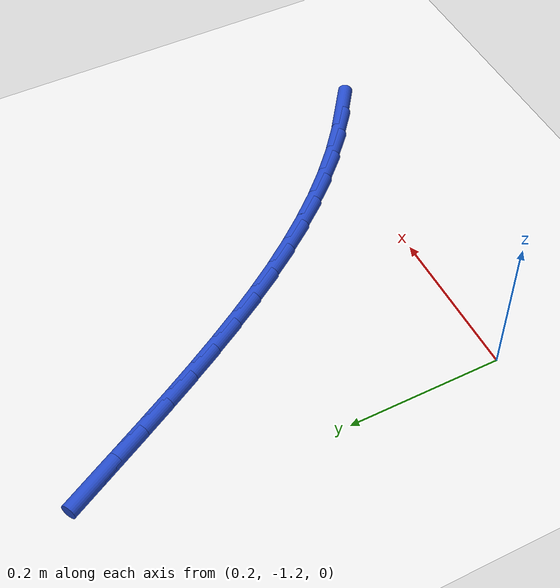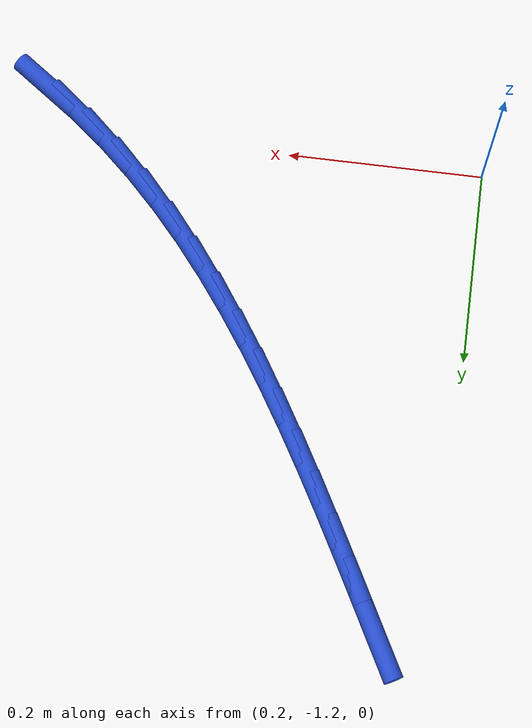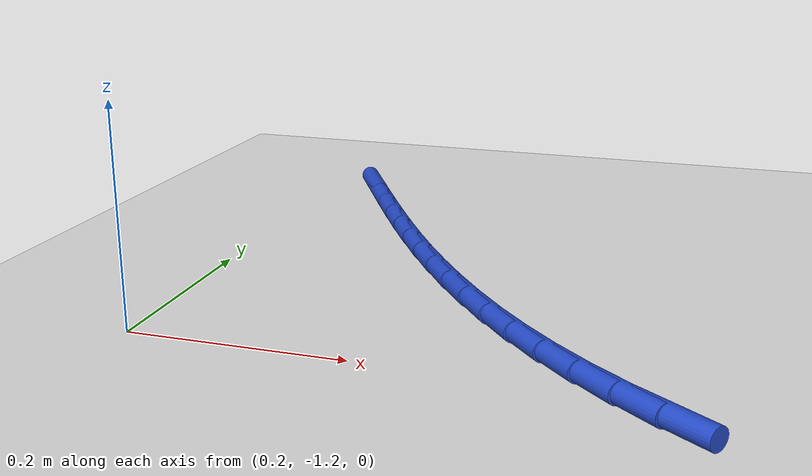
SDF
<sdf version="1.6">
 <world name="default">
  <model name="ground_plane">
   <static>1</static>
   <link name="link">
    <collision name="collision">
     <geometry><plane><normal>0 0 1</normal><size>100 100</size></plane></geometry>
     <surface><friction><ode><mu>100</mu><mu2>50</mu2></ode></friction></surface>
    </collision>
    <visual name="visual">
     <cast_shadows>0</cast_shadows>
     <geometry><plane><normal>0 0 1</normal><size>100 100</size></plane></geometry>
     <material>
      <script><uri>file://media/materials/scripts/gazebo.material</uri><name>Gazebo/WhiteGlow</name></script>
     </material>
    </visual>
   </link>
  </model>
  <model name="line">
   <link name="link_168">
    <pose>0.657720693200562 -1.2424228678594036 0.01 0 1.57 -0.6238436030046115</pose>
    <collision name="collision">
     <geometry><cylinder><radius>0.01</radius><length>0.08</length></cylinder></geometry>
    </collision>
    <visual name="visual">
     <material>
      <script><name>Gazebo/Blue</name><uri>file://media/materials/scripts/gazebo.material</uri></script>
     </material>
     <geometry><cylinder><radius>0.01</radius><length>0.08</length></cylinder></geometry>
    </visual>
   </link>
   <link name="link_169">
    <pose>0.6214488898805819 -1.2163170514186032 0.01 0 1.57 -0.6864108001461492</pose>
    <collision name="collision">
     <geometry><cylinder><radius>0.01</radius><length>0.08</length></cylinder></geometry>
    </collision>
    <visual name="visual">
     <material>
      <script><name>Gazebo/Blue</name><uri>file://media/materials/scripts/gazebo.material</uri></script>
     </material>
     <geometry><cylinder><radius>0.01</radius><length>0.08</length></cylinder></geometry>
    </visual>
   </link>
   <link name="link_170">
    <pose>0.5871202588058564 -1.1881909238742228 0.01 0 1.57 -0.7447463683635274</pose>
    <collision name="collision">
     <geometry><cylinder><radius>0.01</radius><length>0.08</length></cylinder></geometry>
    </collision>
    <visual name="visual">
     <material>
      <script><name>Gazebo/Blue</name><uri>file://media/materials/scripts/gazebo.material</uri></script>
     </material>
     <geometry><cylinder><radius>0.01</radius><length>0.08</length></cylinder></geometry>
    </visual>
   </link>
   <link name="link_171">
    <pose>0.5546168027109996 -1.1582282287050991 0.01 0 1.57 -0.7987568217189515</pose>
    <collision name="collision">
     <geometry><cylinder><radius>0.01</radius><length>0.08</length></cylinder></geometry>
    </collision>
    <visual name="visual">
     <material>
      <script><name>Gazebo/Blue</name><uri>file://media/materials/scripts/gazebo.material</uri></script>
     </material>
     <geometry><cylinder><radius>0.01</radius><length>0.08</length></cylinder></geometry>
    </visual>
   </link>
   <link name="link_172">
    <pose>0.5237991732728033 -1.1265760366215867 0.01 0 1.57 -0.848125636936703</pose>
    <collision name="collision">
     <geometry><cylinder><radius>0.01</radius><length>0.08</length></cylinder></geometry>
    </collision>
    <visual name="visual">
     <material>
      <script><name>Gazebo/Blue</name><uri>file://media/materials/scripts/gazebo.material</uri></script>
     </material>
     <geometry><cylinder><radius>0.01</radius><length>0.08</length></cylinder></geometry>
    </visual>
   </link>
   <link name="link_173">
    <pose>0.4945280221680599 -1.0933814183340398 0.01 0 1.57 -0.8926792010275825</pose>
    <collision name="collision">
     <geometry><cylinder><radius>0.01</radius><length>0.08</length></cylinder></geometry>
    </collision>
    <visual name="visual">
     <material>
      <script><name>Gazebo/Blue</name><uri>file://media/materials/scripts/gazebo.material</uri></script>
     </material>
     <geometry><cylinder><radius>0.01</radius><length>0.08</length></cylinder></geometry>
    </visual>
   </link>
   <link name="link_174">
    <pose>0.4666640010735616 -1.058791444552813 0.01 0 1.57 -0.9323584049516839</pose>
    <collision name="collision">
     <geometry><cylinder><radius>0.01</radius><length>0.08</length></cylinder></geometry>
    </collision>
    <visual name="visual">
     <material>
      <script><name>Gazebo/Blue</name><uri>file://media/materials/scripts/gazebo.material</uri></script>
     </material>
     <geometry><cylinder><radius>0.01</radius><length>0.08</length></cylinder></geometry>
    </visual>
   </link>
   <link name="link_175">
    <pose>0.4400677616661 -1.0229531859882601 0.01 0 1.57 -0.9671881280089392</pose>
    <collision name="collision">
     <geometry><cylinder><radius>0.01</radius><length>0.08</length></cylinder></geometry>
    </collision>
    <visual name="visual">
     <material>
      <script><name>Gazebo/Blue</name><uri>file://media/materials/scripts/gazebo.material</uri></script>
     </material>
     <geometry><cylinder><radius>0.01</radius><length>0.08</length></cylinder></geometry>
    </visual>
   </link>
   <link name="link_176">
    <pose>0.41459995562246765 -0.9860137133507355 0.01 0 1.57 -0.9972485311748105</pose>
    <collision name="collision">
     <geometry><cylinder><radius>0.01</radius><length>0.08</length></cylinder></geometry>
    </collision>
    <visual name="visual">
     <material>
      <script><name>Gazebo/Blue</name><uri>file://media/materials/scripts/gazebo.material</uri></script>
     </material>
     <geometry><cylinder><radius>0.01</radius><length>0.08</length></cylinder></geometry>
    </visual>
   </link>
   <link name="link_177">
    <pose>0.39012123461945636 -0.9481200973505934 0.01 0 1.57 -1.0226503173602253</pose>
    <collision name="collision">
     <geometry><cylinder><radius>0.01</radius><length>0.08</length></cylinder></geometry>
    </collision>
    <visual name="visual">
     <material>
      <script><name>Gazebo/Blue</name><uri>file://media/materials/scripts/gazebo.material</uri></script>
     </material>
     <geometry><cylinder><radius>0.01</radius><length>0.08</length></cylinder></geometry>
    </visual>
   </link>
   <link name="link_178">
    <pose>0.36649225033385835 -0.9094194086981885 0.01 0 1.57 -1.043514729655989</pose>
    <collision name="collision">
     <geometry><cylinder><radius>0.01</radius><length>0.08</length></cylinder></geometry>
    </collision>
    <visual name="visual">
     <material>
      <script><name>Gazebo/Blue</name><uri>file://media/materials/scripts/gazebo.material</uri></script>
     </material>
     <geometry><cylinder><radius>0.01</radius><length>0.08</length></cylinder></geometry>
    </visual>
   </link>
   <link name="link_179">
    <pose>0.3435736544424657 -0.8700587181038743 0.01 0 1.57 -1.0599581631467847</pose>
    <collision name="collision">
     <geometry><cylinder><radius>0.01</radius><length>0.08</length></cylinder></geometry>
    </collision>
    <visual name="visual">
     <material>
      <script><name>Gazebo/Blue</name><uri>file://media/materials/scripts/gazebo.material</uri></script>
     </material>
     <geometry><cylinder><radius>0.01</radius><length>0.08</length></cylinder></geometry>
    </visual>
   </link>
   <link name="link_180">
    <pose>0.3212260986220705 -0.8301850962780056 0.01 0 1.57 -1.0720808028528703</pose>
    <collision name="collision">
     <geometry><cylinder><radius>0.01</radius><length>0.08</length></cylinder></geometry>
    </collision>
    <visual name="visual">
     <material>
      <script><name>Gazebo/Blue</name><uri>file://media/materials/scripts/gazebo.material</uri></script>
     </material>
     <geometry><cylinder><radius>0.01</radius><length>0.08</length></cylinder></geometry>
    </visual>
   </link>
   <link name="link_181">
    <pose>0.2993102345494647 -0.7899456139309361 0.01 0 1.57 -1.0799585472537252</pose>
    <collision name="collision">
     <geometry><cylinder><radius>0.01</radius><length>0.08</length></cylinder></geometry>
    </collision>
    <visual name="visual">
     <material>
      <script><name>Gazebo/Blue</name><uri>file://media/materials/scripts/gazebo.material</uri></script>
     </material>
     <geometry><cylinder><radius>0.01</radius><length>0.08</length></cylinder></geometry>
    </visual>
   </link>
   <link name="link_182">
    <pose>0.2776867139014406 -0.7494873417730205 0.01 0 1.57 -1.0836375150812996</pose>
    <collision name="collision">
     <geometry><cylinder><radius>0.01</radius><length>0.08</length></cylinder></geometry>
    </collision>
    <visual name="visual">
     <material>
      <script><name>Gazebo/Blue</name><uri>file://media/materials/scripts/gazebo.material</uri></script>
     </material>
     <geometry><cylinder><radius>0.01</radius><length>0.08</length></cylinder></geometry>
    </visual>
   </link>
   <link name="link_183">
    <pose>0.2562161883547902 -0.7089573505146131 0.01 0 1.57 -1.0831305749630167</pose>
    <collision name="collision">
     <geometry><cylinder><radius>0.01</radius><length>0.08</length></cylinder></geometry>
    </collision>
    <visual name="visual">
     <material>
      <script><name>Gazebo/Blue</name><uri>file://media/materials/scripts/gazebo.material</uri></script>
     </material>
     <geometry><cylinder><radius>0.01</radius><length>0.08</length></cylinder></geometry>
    </visual>
   </link>
  </model>
 </world>
</sdf>
